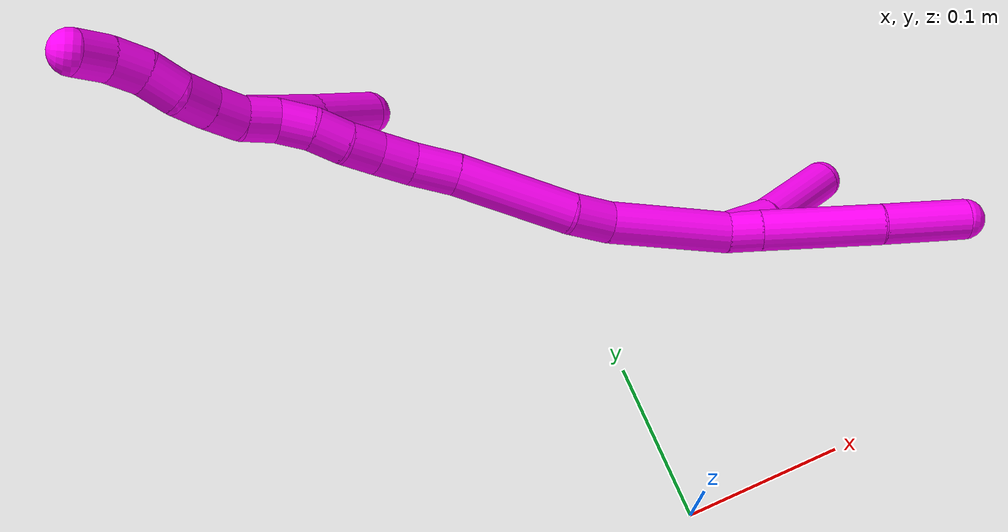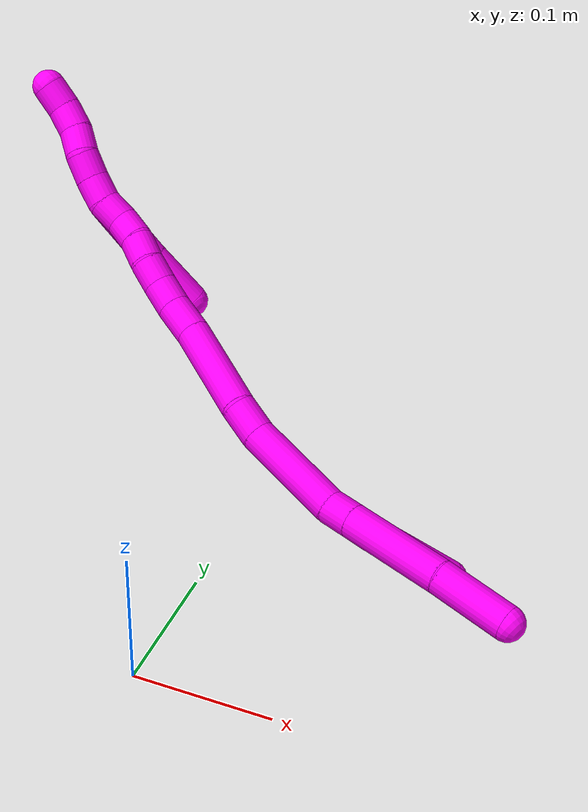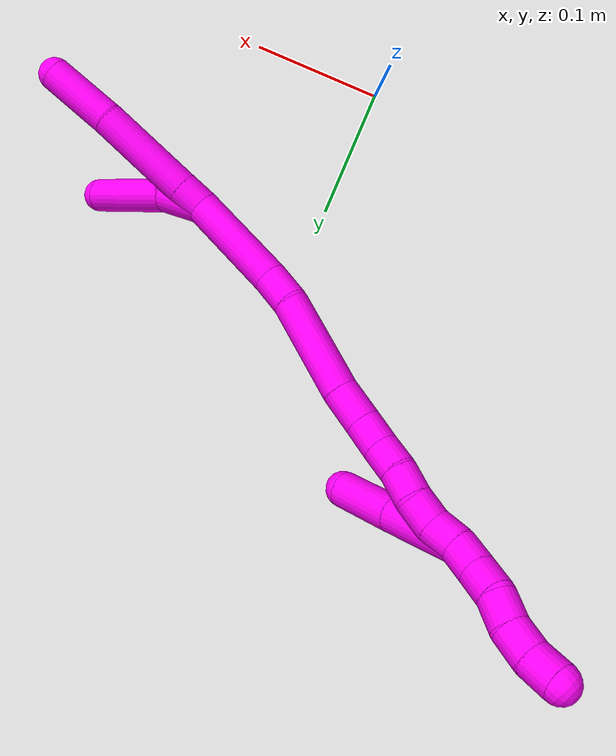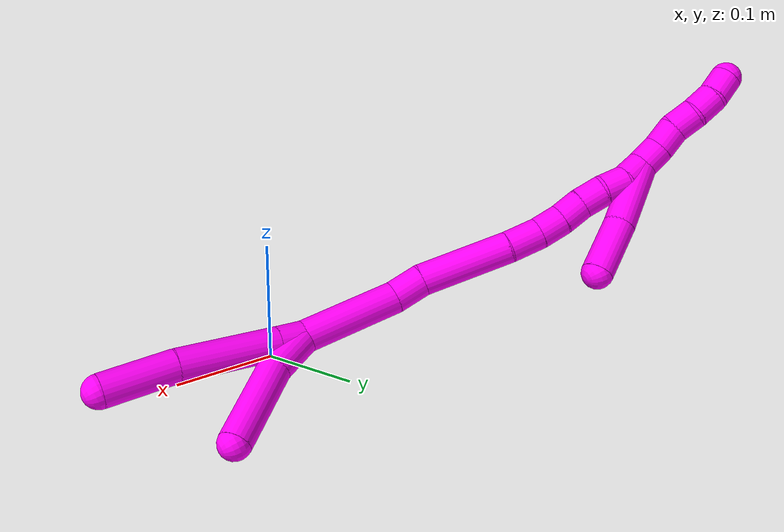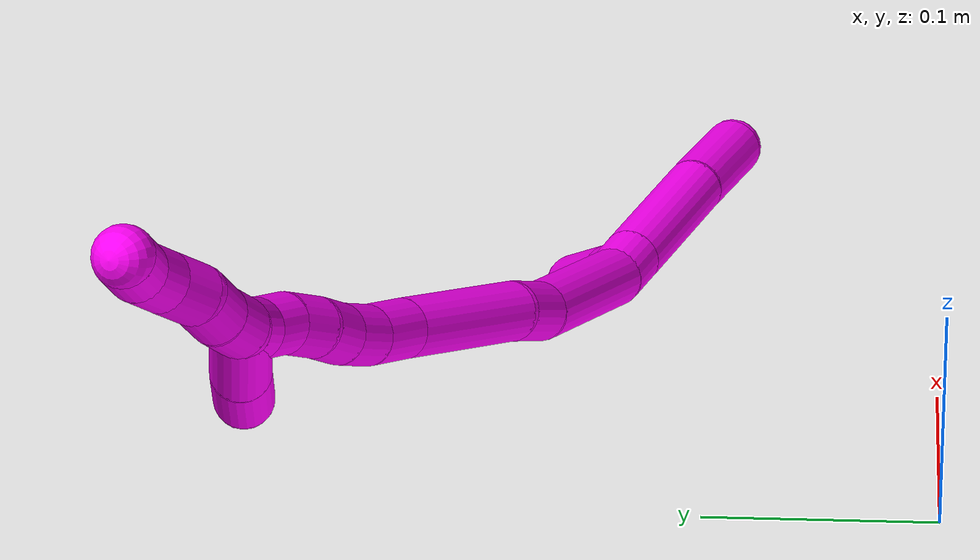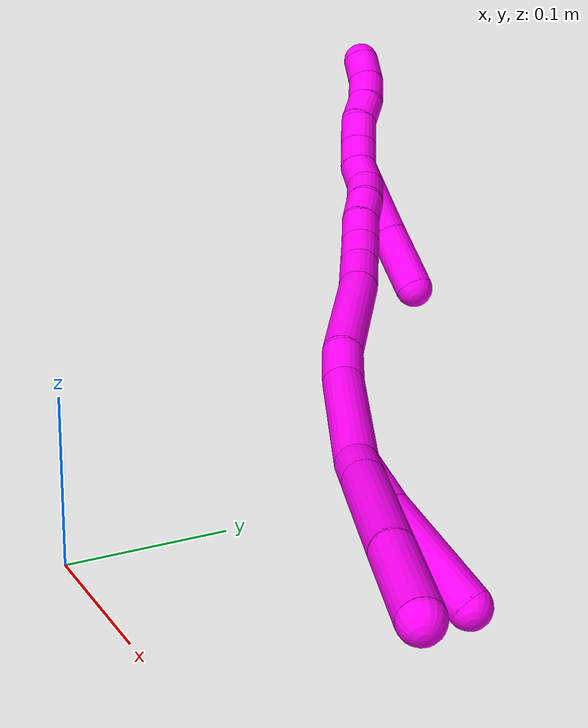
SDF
<sdf version="1.7">
 <world name="default">
  <model name="10">
   <static>0</static>
   <link name="10">
    <collision name="collision-cylinder-e_1_2_8">
     <pose>0.002743 -0.001044 -0.009913 3.03669 0.268512 2.40014</pose>
     <geometry><cylinder><radius>0.0125</radius><length>0.020677</length></cylinder></geometry>
     <surface>
      <friction><ode><mu>1.16</mu><mu2>1.16</mu2><slip1>0</slip1><slip2>0</slip2></ode></friction>
      <contact><ode><kp>1e+06</kp><kd>1</kd><max_vel>0</max_vel><min_depth>0.001</min_depth></ode></contact>
     </surface>
    </collision>
    <visual name="visual-cylinder-e_1_2_8">
     <pose>0.002743 -0.001044 -0.009913 3.03669 0.268512 2.40014</pose>
     <geometry><cylinder><radius>0.0125</radius><length>0.020677</length></cylinder></geometry>
     <material><ambient>1 0 0.964706 1</ambient></material>
    </visual>
    <collision name="collision-cylinder-e_2_8_9">
     <pose>0.015597 -0.006296 -0.055743 3.02495 0.27266 2.33681</pose>
     <geometry><cylinder><radius>0.0125</radius><length>0.075099</length></cylinder></geometry>
     <surface>
      <friction><ode><mu>1.16</mu><mu2>1.16</mu2><slip1>0</slip1><slip2>0</slip2></ode></friction>
      <contact><ode><kp>1e+06</kp><kd>1</kd><max_vel>0</max_vel><min_depth>0.001</min_depth></ode></contact>
     </surface>
    </collision>
    <visual name="visual-cylinder-e_2_8_9">
     <pose>0.015597 -0.006296 -0.055743 3.02495 0.27266 2.33681</pose>
     <geometry><cylinder><radius>0.0125</radius><length>0.075099</length></cylinder></geometry>
     <material><ambient>1 0 0.964706 1</ambient></material>
    </visual>
    <collision name="collision-cylinder-e_3_9_6">
     <pose>0.031422 -0.011406 -0.118148 3.10758 0.212309 2.825</pose>
     <geometry><cylinder><radius>0.0125</radius><length>0.054224</length></cylinder></geometry>
     <surface>
      <friction><ode><mu>1.16</mu><mu2>1.16</mu2><slip1>0</slip1><slip2>0</slip2></ode></friction>
      <contact><ode><kp>1e+06</kp><kd>1</kd><max_vel>0</max_vel><min_depth>0.001</min_depth></ode></contact>
     </surface>
    </collision>
    <visual name="visual-cylinder-e_3_9_6">
     <pose>0.031422 -0.011406 -0.118148 3.10758 0.212309 2.825</pose>
     <geometry><cylinder><radius>0.0125</radius><length>0.054224</length></cylinder></geometry>
     <material><ambient>1 0 0.964706 1</ambient></material>
    </visual>
    <collision name="collision-cylinder-e_1_2_10">
     <pose>0.000919 0.006919 -0.015521 -2.72224 0.054034 -0.252624</pose>
     <geometry><cylinder><radius>0.0125</radius><length>0.034037</length></cylinder></geometry>
     <surface>
      <friction><ode><mu>1.16</mu><mu2>1.16</mu2><slip1>0</slip1><slip2>0</slip2></ode></friction>
      <contact><ode><kp>1e+06</kp><kd>1</kd><max_vel>0</max_vel><min_depth>0.001</min_depth></ode></contact>
     </surface>
    </collision>
    <visual name="visual-cylinder-e_1_2_10">
     <pose>0.000919 0.006919 -0.015521 -2.72224 0.054034 -0.252624</pose>
     <geometry><cylinder><radius>0.0125</radius><length>0.034037</length></cylinder></geometry>
     <material><ambient>1 0 0.964706 1</ambient></material>
    </visual>
    <collision name="collision-cylinder-e_2_10_5">
     <pose>0.002368 0.034159 -0.057015 -2.47769 0.016054 -0.046566</pose>
     <geometry><cylinder><radius>0.0125</radius><length>0.065963</length></cylinder></geometry>
     <surface>
      <friction><ode><mu>1.16</mu><mu2>1.16</mu2><slip1>0</slip1><slip2>0</slip2></ode></friction>
      <contact><ode><kp>1e+06</kp><kd>1</kd><max_vel>0</max_vel><min_depth>0.001</min_depth></ode></contact>
     </surface>
    </collision>
    <visual name="visual-cylinder-e_2_10_5">
     <pose>0.002368 0.034159 -0.057015 -2.47769 0.016054 -0.046566</pose>
     <geometry><cylinder><radius>0.0125</radius><length>0.065963</length></cylinder></geometry>
     <material><ambient>1 0 0.964706 1</ambient></material>
    </visual>
    <collision name="collision-cylinder-e_1_2_11">
     <pose>-0.001662 0.00215 0.037525 -0.057236 -0.044177 0.001265</pose>
     <geometry><cylinder><radius>0.0125</radius><length>0.075247</length></cylinder></geometry>
     <surface>
      <friction><ode><mu>1.16</mu><mu2>1.16</mu2><slip1>0</slip1><slip2>0</slip2></ode></friction>
      <contact><ode><kp>1e+06</kp><kd>1</kd><max_vel>0</max_vel><min_depth>0.001</min_depth></ode></contact>
     </surface>
    </collision>
    <visual name="visual-cylinder-e_1_2_11">
     <pose>-0.001662 0.00215 0.037525 -0.057236 -0.044177 0.001265</pose>
     <geometry><cylinder><radius>0.0125</radius><length>0.075247</length></cylinder></geometry>
     <material><ambient>1 0 0.964706 1</ambient></material>
    </visual>
    <collision name="collision-cylinder-e_2_11_12">
     <pose>-0.001411 0.0046 0.087515 -0.024015 0.152171 -0.001831</pose>
     <geometry><cylinder><radius>0.0125</radius><length>0.025226</length></cylinder></geometry>
     <surface>
      <friction><ode><mu>1.16</mu><mu2>1.16</mu2><slip1>0</slip1><slip2>0</slip2></ode></friction>
      <contact><ode><kp>1e+06</kp><kd>1</kd><max_vel>0</max_vel><min_depth>0.001</min_depth></ode></contact>
     </surface>
    </collision>
    <visual name="visual-cylinder-e_2_11_12">
     <pose>-0.001411 0.0046 0.087515 -0.024015 0.152171 -0.001831</pose>
     <geometry><cylinder><radius>0.0125</radius><length>0.025226</length></cylinder></geometry>
     <material><ambient>1 0 0.964706 1</ambient></material>
    </visual>
    <collision name="collision-cylinder-e_3_12_13">
     <pose>0.004366 0.013376 0.134479 -0.240943 0.108361 -0.013131</pose>
     <geometry><cylinder><radius>0.0125</radius><length>0.071473</length></cylinder></geometry>
     <surface>
      <friction><ode><mu>1.16</mu><mu2>1.16</mu2><slip1>0</slip1><slip2>0</slip2></ode></friction>
      <contact><ode><kp>1e+06</kp><kd>1</kd><max_vel>0</max_vel><min_depth>0.001</min_depth></ode></contact>
     </surface>
    </collision>
    <visual name="visual-cylinder-e_3_12_13">
     <pose>0.004366 0.013376 0.134479 -0.240943 0.108361 -0.013131</pose>
     <geometry><cylinder><radius>0.0125</radius><length>0.071473</length></cylinder></geometry>
     <material><ambient>1 0 0.964706 1</ambient></material>
    </visual>
    <collision name="collision-cylinder-e_4_13_14">
     <pose>0.009245 0.023618 0.182092 -0.133712 0.076563 -0.005129</pose>
     <geometry><cylinder><radius>0.0125</radius><length>0.026539</length></cylinder></geometry>
     <surface>
      <friction><ode><mu>1.16</mu><mu2>1.16</mu2><slip1>0</slip1><slip2>0</slip2></ode></friction>
      <contact><ode><kp>1e+06</kp><kd>1</kd><max_vel>0</max_vel><min_depth>0.001</min_depth></ode></contact>
     </surface>
    </collision>
    <visual name="visual-cylinder-e_4_13_14">
     <pose>0.009245 0.023618 0.182092 -0.133712 0.076563 -0.005129</pose>
     <geometry><cylinder><radius>0.0125</radius><length>0.026539</length></cylinder></geometry>
     <material><ambient>1 0 0.964706 1</ambient></material>
    </visual>
    <collision name="collision-cylinder-e_5_14_15">
     <pose>0.012284 0.026122 0.205569 -0.071348 0.192324 -0.006885</pose>
     <geometry><cylinder><radius>0.0125</radius><length>0.021171</length></cylinder></geometry>
     <surface>
      <friction><ode><mu>1.16</mu><mu2>1.16</mu2><slip1>0</slip1><slip2>0</slip2></ode></friction>
      <contact><ode><kp>1e+06</kp><kd>1</kd><max_vel>0</max_vel><min_depth>0.001</min_depth></ode></contact>
     </surface>
    </collision>
    <visual name="visual-cylinder-e_5_14_15">
     <pose>0.012284 0.026122 0.205569 -0.071348 0.192324 -0.006885</pose>
     <geometry><cylinder><radius>0.0125</radius><length>0.021171</length></cylinder></geometry>
     <material><ambient>1 0 0.964706 1</ambient></material>
    </visual>
    <collision name="collision-cylinder-e_6_15_16">
     <pose>0.017054 0.026634 0.225589 0.023735 0.277113 0.00331</pose>
     <geometry><cylinder><radius>0.0125</radius><length>0.020084</length></cylinder></geometry>
     <surface>
      <friction><ode><mu>1.16</mu><mu2>1.16</mu2><slip1>0</slip1><slip2>0</slip2></ode></friction>
      <contact><ode><kp>1e+06</kp><kd>1</kd><max_vel>0</max_vel><min_depth>0.001</min_depth></ode></contact>
     </surface>
    </collision>
    <visual name="visual-cylinder-e_6_15_16">
     <pose>0.017054 0.026634 0.225589 0.023735 0.277113 0.00331</pose>
     <geometry><cylinder><radius>0.0125</radius><length>0.020084</length></cylinder></geometry>
     <material><ambient>1 0 0.964706 1</ambient></material>
    </visual>
    <collision name="collision-cylinder-e_7_16_17">
     <pose>0.022549 0.027861 0.24487 -0.15016 0.275018 -0.020818</pose>
     <geometry><cylinder><radius>0.0125</radius><length>0.02023</length></cylinder></geometry>
     <surface>
      <friction><ode><mu>1.16</mu><mu2>1.16</mu2><slip1>0</slip1><slip2>0</slip2></ode></friction>
      <contact><ode><kp>1e+06</kp><kd>1</kd><max_vel>0</max_vel><min_depth>0.001</min_depth></ode></contact>
     </surface>
    </collision>
    <visual name="visual-cylinder-e_7_16_17">
     <pose>0.022549 0.027861 0.24487 -0.15016 0.275018 -0.020818</pose>
     <geometry><cylinder><radius>0.0125</radius><length>0.02023</length></cylinder></geometry>
     <material><ambient>1 0 0.964706 1</ambient></material>
    </visual>
    <collision name="collision-cylinder-e_8_17_18">
     <pose>0.025922 0.030605 0.264402 -0.129313 0.062596 -0.004054</pose>
     <geometry><cylinder><radius>0.0125</radius><length>0.020018</length></cylinder></geometry>
     <surface>
      <friction><ode><mu>1.16</mu><mu2>1.16</mu2><slip1>0</slip1><slip2>0</slip2></ode></friction>
      <contact><ode><kp>1e+06</kp><kd>1</kd><max_vel>0</max_vel><min_depth>0.001</min_depth></ode></contact>
     </surface>
    </collision>
    <visual name="visual-cylinder-e_8_17_18">
     <pose>0.025922 0.030605 0.264402 -0.129313 0.062596 -0.004054</pose>
     <geometry><cylinder><radius>0.0125</radius><length>0.020018</length></cylinder></geometry>
     <material><ambient>1 0 0.964706 1</ambient></material>
    </visual>
    <collision name="collision-cylinder-e_9_18_1">
     <pose>0.027533 0.029927 0.284069 0.198784 0.098614 0.009842</pose>
     <geometry><cylinder><radius>0.0125</radius><length>0.020011</length></cylinder></geometry>
     <surface>
      <friction><ode><mu>1.16</mu><mu2>1.16</mu2><slip1>0</slip1><slip2>0</slip2></ode></friction>
      <contact><ode><kp>1e+06</kp><kd>1</kd><max_vel>0</max_vel><min_depth>0.001</min_depth></ode></contact>
     </surface>
    </collision>
    <visual name="visual-cylinder-e_9_18_1">
     <pose>0.027533 0.029927 0.284069 0.198784 0.098614 0.009842</pose>
     <geometry><cylinder><radius>0.0125</radius><length>0.020011</length></cylinder></geometry>
     <material><ambient>1 0 0.964706 1</ambient></material>
    </visual>
    <collision name="collision-cylinder-e_1_1_19">
     <pose>0.032153 0.027036 0.3031 0.099417 0.371994 0.018722</pose>
     <geometry><cylinder><radius>0.0125</radius><length>0.02</length></cylinder></geometry>
     <surface>
      <friction><ode><mu>1.16</mu><mu2>1.16</mu2><slip1>0</slip1><slip2>0</slip2></ode></friction>
      <contact><ode><kp>1e+06</kp><kd>1</kd><max_vel>0</max_vel><min_depth>0.001</min_depth></ode></contact>
     </surface>
    </collision>
    <visual name="visual-cylinder-e_1_1_19">
     <pose>0.032153 0.027036 0.3031 0.099417 0.371994 0.018722</pose>
     <geometry><cylinder><radius>0.0125</radius><length>0.02</length></cylinder></geometry>
     <material><ambient>1 0 0.964706 1</ambient></material>
    </visual>
    <collision name="collision-cylinder-e_2_19_20">
     <pose>0.040506 0.02451 0.321039 0.182642 0.491467 0.045927</pose>
     <geometry><cylinder><radius>0.0125</radius><length>0.02</length></cylinder></geometry>
     <surface>
      <friction><ode><mu>1.16</mu><mu2>1.16</mu2><slip1>0</slip1><slip2>0</slip2></ode></friction>
      <contact><ode><kp>1e+06</kp><kd>1</kd><max_vel>0</max_vel><min_depth>0.001</min_depth></ode></contact>
     </surface>
    </collision>
    <visual name="visual-cylinder-e_2_19_20">
     <pose>0.040506 0.02451 0.321039 0.182642 0.491467 0.045927</pose>
     <geometry><cylinder><radius>0.0125</radius><length>0.02</length></cylinder></geometry>
     <material><ambient>1 0 0.964706 1</ambient></material>
    </visual>
    <collision name="collision-cylinder-e_3_20_21">
     <pose>0.049681 0.024359 0.338544 -0.162726 0.461715 -0.038328</pose>
     <geometry><cylinder><radius>0.0125</radius><length>0.02</length></cylinder></geometry>
     <surface>
      <friction><ode><mu>1.16</mu><mu2>1.16</mu2><slip1>0</slip1><slip2>0</slip2></ode></friction>
      <contact><ode><kp>1e+06</kp><kd>1</kd><max_vel>0</max_vel><min_depth>0.001</min_depth></ode></contact>
     </surface>
    </collision>
    <visual name="visual-cylinder-e_3_20_21">
     <pose>0.049681 0.024359 0.338544 -0.162726 0.461715 -0.038328</pose>
     <geometry><cylinder><radius>0.0125</radius><length>0.02</length></cylinder></geometry>
     <material><ambient>1 0 0.964706 1</ambient></material>
    </visual>
    <collision name="collision-cylinder-e_4_21_22">
     <pose>0.057442 0.025339 0.356804 0.049932 0.336968 0.008495</pose>
     <geometry><cylinder><radius>0.0125</radius><length>0.02</length></cylinder></geometry>
     <surface>
      <friction><ode><mu>1.16</mu><mu2>1.16</mu2><slip1>0</slip1><slip2>0</slip2></ode></friction>
      <contact><ode><kp>1e+06</kp><kd>1</kd><max_vel>0</max_vel><min_depth>0.001</min_depth></ode></contact>
     </surface>
    </collision>
    <visual name="visual-cylinder-e_4_21_22">
     <pose>0.057442 0.025339 0.356804 0.049932 0.336968 0.008495</pose>
     <geometry><cylinder><radius>0.0125</radius><length>0.02</length></cylinder></geometry>
     <material><ambient>1 0 0.964706 1</ambient></material>
    </visual>
    <collision name="collision-cylinder-e_5_22_4">
     <pose>0.063847 0.021923 0.37527 0.31487 0.315125 0.050433</pose>
     <geometry><cylinder><radius>0.0125</radius><length>0.02</length></cylinder></geometry>
     <surface>
      <friction><ode><mu>1.16</mu><mu2>1.16</mu2><slip1>0</slip1><slip2>0</slip2></ode></friction>
      <contact><ode><kp>1e+06</kp><kd>1</kd><max_vel>0</max_vel><min_depth>0.001</min_depth></ode></contact>
     </surface>
    </collision>
    <visual name="visual-cylinder-e_5_22_4">
     <pose>0.063847 0.021923 0.37527 0.31487 0.315125 0.050433</pose>
     <geometry><cylinder><radius>0.0125</radius><length>0.02</length></cylinder></geometry>
     <material><ambient>1 0 0.964706 1</ambient></material>
    </visual>
    <collision name="collision-cylinder-e_1_1_23">
     <pose>0.020534 0.042287 0.271666 -2.56776 -0.293767 0.929577</pose>
     <geometry><cylinder><radius>0.0125</radius><length>0.055142</length></cylinder></geometry>
     <surface>
      <friction><ode><mu>1.16</mu><mu2>1.16</mu2><slip1>0</slip1><slip2>0</slip2></ode></friction>
      <contact><ode><kp>1e+06</kp><kd>1</kd><max_vel>0</max_vel><min_depth>0.001</min_depth></ode></contact>
     </surface>
    </collision>
    <visual name="visual-cylinder-e_1_1_23">
     <pose>0.020534 0.042287 0.271666 -2.56776 -0.293767 0.929577</pose>
     <geometry><cylinder><radius>0.0125</radius><length>0.055142</length></cylinder></geometry>
     <material><ambient>1 0 0.964706 1</ambient></material>
    </visual>
    <collision name="collision-cylinder-e_2_23_3">
     <pose>0.007436 0.06741 0.230522 -2.62438 -0.230087 0.823687</pose>
     <geometry><cylinder><radius>0.0125</radius><length>0.044858</length></cylinder></geometry>
     <surface>
      <friction><ode><mu>1.16</mu><mu2>1.16</mu2><slip1>0</slip1><slip2>0</slip2></ode></friction>
      <contact><ode><kp>1e+06</kp><kd>1</kd><max_vel>0</max_vel><min_depth>0.001</min_depth></ode></contact>
     </surface>
    </collision>
    <visual name="visual-cylinder-e_2_23_3">
     <pose>0.007436 0.06741 0.230522 -2.62438 -0.230087 0.823687</pose>
     <geometry><cylinder><radius>0.0125</radius><length>0.044858</length></cylinder></geometry>
     <material><ambient>1 0 0.964706 1</ambient></material>
    </visual>
    <collision name="collision-sphere-3">
     <pose>0.00232 0.078208 0.211541 0 -0 0</pose>
     <geometry><sphere><radius>0.0125</radius></sphere></geometry>
     <surface>
      <friction><ode><mu>1.16</mu><mu2>1.16</mu2><slip1>0</slip1><slip2>0</slip2></ode></friction>
      <contact><ode><kp>1e+06</kp><kd>1</kd><max_vel>0</max_vel><min_depth>0.001</min_depth></ode></contact>
     </surface>
    </collision>
    <visual name="visual-sphere-3">
     <pose>0.00232 0.078208 0.211541 0 -0 0</pose>
     <geometry><sphere><radius>0.0125</radius></sphere></geometry>
     <material><ambient>1 0 0.964706 1</ambient></material>
    </visual>
    <collision name="collision-sphere-23">
     <pose>0.012551 0.056613 0.249503 0 -0 0</pose>
     <geometry><sphere><radius>0.0125</radius></sphere></geometry>
     <surface>
      <friction><ode><mu>1.16</mu><mu2>1.16</mu2><slip1>0</slip1><slip2>0</slip2></ode></friction>
      <contact><ode><kp>1e+06</kp><kd>1</kd><max_vel>0</max_vel><min_depth>0.001</min_depth></ode></contact>
     </surface>
    </collision>
    <visual name="visual-sphere-23">
     <pose>0.012551 0.056613 0.249503 0 -0 0</pose>
     <geometry><sphere><radius>0.0125</radius></sphere></geometry>
     <material><ambient>1 0 0.964706 1</ambient></material>
    </visual>
    <collision name="collision-sphere-4">
     <pose>0.066947 0.018979 0.38431 0 -0 0</pose>
     <geometry><sphere><radius>0.0125</radius></sphere></geometry>
     <surface>
      <friction><ode><mu>1.16</mu><mu2>1.16</mu2><slip1>0</slip1><slip2>0</slip2></ode></friction>
      <contact><ode><kp>1e+06</kp><kd>1</kd><max_vel>0</max_vel><min_depth>0.001</min_depth></ode></contact>
     </surface>
    </collision>
    <visual name="visual-sphere-4">
     <pose>0.066947 0.018979 0.38431 0 -0 0</pose>
     <geometry><sphere><radius>0.0125</radius></sphere></geometry>
     <material><ambient>1 0 0.964706 1</ambient></material>
    </visual>
    <collision name="collision-sphere-22">
     <pose>0.060748 0.024868 0.36623 0 -0 0</pose>
     <geometry><sphere><radius>0.0125</radius></sphere></geometry>
     <surface>
      <friction><ode><mu>1.16</mu><mu2>1.16</mu2><slip1>0</slip1><slip2>0</slip2></ode></friction>
      <contact><ode><kp>1e+06</kp><kd>1</kd><max_vel>0</max_vel><min_depth>0.001</min_depth></ode></contact>
     </surface>
    </collision>
    <visual name="visual-sphere-22">
     <pose>0.060748 0.024868 0.36623 0 -0 0</pose>
     <geometry><sphere><radius>0.0125</radius></sphere></geometry>
     <material><ambient>1 0 0.964706 1</ambient></material>
    </visual>
    <collision name="collision-sphere-21">
     <pose>0.054135 0.02581 0.347378 0 -0 0</pose>
     <geometry><sphere><radius>0.0125</radius></sphere></geometry>
     <surface>
      <friction><ode><mu>1.16</mu><mu2>1.16</mu2><slip1>0</slip1><slip2>0</slip2></ode></friction>
      <contact><ode><kp>1e+06</kp><kd>1</kd><max_vel>0</max_vel><min_depth>0.001</min_depth></ode></contact>
     </surface>
    </collision>
    <visual name="visual-sphere-21">
     <pose>0.054135 0.02581 0.347378 0 -0 0</pose>
     <geometry><sphere><radius>0.0125</radius></sphere></geometry>
     <material><ambient>1 0 0.964706 1</ambient></material>
    </visual>
    <collision name="collision-sphere-20">
     <pose>0.045226 0.022909 0.329709 0 -0 0</pose>
     <geometry><sphere><radius>0.0125</radius></sphere></geometry>
     <surface>
      <friction><ode><mu>1.16</mu><mu2>1.16</mu2><slip1>0</slip1><slip2>0</slip2></ode></friction>
      <contact><ode><kp>1e+06</kp><kd>1</kd><max_vel>0</max_vel><min_depth>0.001</min_depth></ode></contact>
     </surface>
    </collision>
    <visual name="visual-sphere-20">
     <pose>0.045226 0.022909 0.329709 0 -0 0</pose>
     <geometry><sphere><radius>0.0125</radius></sphere></geometry>
     <material><ambient>1 0 0.964706 1</ambient></material>
    </visual>
    <collision name="collision-sphere-5">
     <pose>0.002897 0.05448 -0.082988 0 -0 0</pose>
     <geometry><sphere><radius>0.0125</radius></sphere></geometry>
     <surface>
      <friction><ode><mu>1.16</mu><mu2>1.16</mu2><slip1>0</slip1><slip2>0</slip2></ode></friction>
      <contact><ode><kp>1e+06</kp><kd>1</kd><max_vel>0</max_vel><min_depth>0.001</min_depth></ode></contact>
     </surface>
    </collision>
    <visual name="visual-sphere-5">
     <pose>0.002897 0.05448 -0.082988 0 -0 0</pose>
     <geometry><sphere><radius>0.0125</radius></sphere></geometry>
     <material><ambient>1 0 0.964706 1</ambient></material>
    </visual>
    <collision name="collision-sphere-10">
     <pose>0.001838 0.013838 -0.031042 0 -0 0</pose>
     <geometry><sphere><radius>0.0125</radius></sphere></geometry>
     <surface>
      <friction><ode><mu>1.16</mu><mu2>1.16</mu2><slip1>0</slip1><slip2>0</slip2></ode></friction>
      <contact><ode><kp>1e+06</kp><kd>1</kd><max_vel>0</max_vel><min_depth>0.001</min_depth></ode></contact>
     </surface>
    </collision>
    <visual name="visual-sphere-10">
     <pose>0.001838 0.013838 -0.031042 0 -0 0</pose>
     <geometry><sphere><radius>0.0125</radius></sphere></geometry>
     <material><ambient>1 0 0.964706 1</ambient></material>
    </visual>
    <collision name="collision-sphere-6">
     <pose>0.037135 -0.012307 -0.144636 0 -0 0</pose>
     <geometry><sphere><radius>0.0125</radius></sphere></geometry>
     <surface>
      <friction><ode><mu>1.16</mu><mu2>1.16</mu2><slip1>0</slip1><slip2>0</slip2></ode></friction>
      <contact><ode><kp>1e+06</kp><kd>1</kd><max_vel>0</max_vel><min_depth>0.001</min_depth></ode></contact>
     </surface>
    </collision>
    <visual name="visual-sphere-6">
     <pose>0.037135 -0.012307 -0.144636 0 -0 0</pose>
     <geometry><sphere><radius>0.0125</radius></sphere></geometry>
     <material><ambient>1 0 0.964706 1</ambient></material>
    </visual>
    <collision name="collision-sphere-9">
     <pose>0.025709 -0.010504 -0.091659 0 -0 0</pose>
     <geometry><sphere><radius>0.0125</radius></sphere></geometry>
     <surface>
      <friction><ode><mu>1.16</mu><mu2>1.16</mu2><slip1>0</slip1><slip2>0</slip2></ode></friction>
      <contact><ode><kp>1e+06</kp><kd>1</kd><max_vel>0</max_vel><min_depth>0.001</min_depth></ode></contact>
     </surface>
    </collision>
    <visual name="visual-sphere-9">
     <pose>0.025709 -0.010504 -0.091659 0 -0 0</pose>
     <geometry><sphere><radius>0.0125</radius></sphere></geometry>
     <material><ambient>1 0 0.964706 1</ambient></material>
    </visual>
    <collision name="collision-sphere-2">
     <geometry><sphere><radius>0.0125</radius></sphere></geometry>
     <surface>
      <friction><ode><mu>1.16</mu><mu2>1.16</mu2><slip1>0</slip1><slip2>0</slip2></ode></friction>
      <contact><ode><kp>1e+06</kp><kd>1</kd><max_vel>0</max_vel><min_depth>0.001</min_depth></ode></contact>
     </surface>
    </collision>
    <visual name="visual-sphere-2">
     <geometry><sphere><radius>0.0125</radius></sphere></geometry>
     <material><ambient>1 0 0.964706 1</ambient></material>
    </visual>
    <collision name="collision-sphere-19">
     <pose>0.035787 0.026111 0.31237 0 -0 0</pose>
     <geometry><sphere><radius>0.0125</radius></sphere></geometry>
     <surface>
      <friction><ode><mu>1.16</mu><mu2>1.16</mu2><slip1>0</slip1><slip2>0</slip2></ode></friction>
      <contact><ode><kp>1e+06</kp><kd>1</kd><max_vel>0</max_vel><min_depth>0.001</min_depth></ode></contact>
     </surface>
    </collision>
    <visual name="visual-sphere-19">
     <pose>0.035787 0.026111 0.31237 0 -0 0</pose>
     <geometry><sphere><radius>0.0125</radius></sphere></geometry>
     <material><ambient>1 0 0.964706 1</ambient></material>
    </visual>
    <collision name="collision-sphere-8">
     <pose>0.005485 -0.002088 -0.019826 0 -0 0</pose>
     <geometry><sphere><radius>0.0125</radius></sphere></geometry>
     <surface>
      <friction><ode><mu>1.16</mu><mu2>1.16</mu2><slip1>0</slip1><slip2>0</slip2></ode></friction>
      <contact><ode><kp>1e+06</kp><kd>1</kd><max_vel>0</max_vel><min_depth>0.001</min_depth></ode></contact>
     </surface>
    </collision>
    <visual name="visual-sphere-8">
     <pose>0.005485 -0.002088 -0.019826 0 -0 0</pose>
     <geometry><sphere><radius>0.0125</radius></sphere></geometry>
     <material><ambient>1 0 0.964706 1</ambient></material>
    </visual>
    <collision name="collision-sphere-11">
     <pose>-0.003323 0.0043 0.075051 0 -0 0</pose>
     <geometry><sphere><radius>0.0125</radius></sphere></geometry>
     <surface>
      <friction><ode><mu>1.16</mu><mu2>1.16</mu2><slip1>0</slip1><slip2>0</slip2></ode></friction>
      <contact><ode><kp>1e+06</kp><kd>1</kd><max_vel>0</max_vel><min_depth>0.001</min_depth></ode></contact>
     </surface>
    </collision>
    <visual name="visual-sphere-11">
     <pose>-0.003323 0.0043 0.075051 0 -0 0</pose>
     <geometry><sphere><radius>0.0125</radius></sphere></geometry>
     <material><ambient>1 0 0.964706 1</ambient></material>
    </visual>
    <collision name="collision-sphere-12">
     <pose>0.000501 0.004899 0.099979 0 -0 0</pose>
     <geometry><sphere><radius>0.0125</radius></sphere></geometry>
     <surface>
      <friction><ode><mu>1.16</mu><mu2>1.16</mu2><slip1>0</slip1><slip2>0</slip2></ode></friction>
      <contact><ode><kp>1e+06</kp><kd>1</kd><max_vel>0</max_vel><min_depth>0.001</min_depth></ode></contact>
     </surface>
    </collision>
    <visual name="visual-sphere-12">
     <pose>0.000501 0.004899 0.099979 0 -0 0</pose>
     <geometry><sphere><radius>0.0125</radius></sphere></geometry>
     <material><ambient>1 0 0.964706 1</ambient></material>
    </visual>
    <collision name="collision-sphere-13">
     <pose>0.008231 0.021854 0.16898 0 -0 0</pose>
     <geometry><sphere><radius>0.0125</radius></sphere></geometry>
     <surface>
      <friction><ode><mu>1.16</mu><mu2>1.16</mu2><slip1>0</slip1><slip2>0</slip2></ode></friction>
      <contact><ode><kp>1e+06</kp><kd>1</kd><max_vel>0</max_vel><min_depth>0.001</min_depth></ode></contact>
     </surface>
    </collision>
    <visual name="visual-sphere-13">
     <pose>0.008231 0.021854 0.16898 0 -0 0</pose>
     <geometry><sphere><radius>0.0125</radius></sphere></geometry>
     <material><ambient>1 0 0.964706 1</ambient></material>
    </visual>
    <collision name="collision-sphere-14">
     <pose>0.01026 0.025381 0.195205 0 -0 0</pose>
     <geometry><sphere><radius>0.0125</radius></sphere></geometry>
     <surface>
      <friction><ode><mu>1.16</mu><mu2>1.16</mu2><slip1>0</slip1><slip2>0</slip2></ode></friction>
      <contact><ode><kp>1e+06</kp><kd>1</kd><max_vel>0</max_vel><min_depth>0.001</min_depth></ode></contact>
     </surface>
    </collision>
    <visual name="visual-sphere-14">
     <pose>0.01026 0.025381 0.195205 0 -0 0</pose>
     <geometry><sphere><radius>0.0125</radius></sphere></geometry>
     <material><ambient>1 0 0.964706 1</ambient></material>
    </visual>
    <collision name="collision-sphere-15">
     <pose>0.014307 0.026863 0.215932 0 -0 0</pose>
     <geometry><sphere><radius>0.0125</radius></sphere></geometry>
     <surface>
      <friction><ode><mu>1.16</mu><mu2>1.16</mu2><slip1>0</slip1><slip2>0</slip2></ode></friction>
      <contact><ode><kp>1e+06</kp><kd>1</kd><max_vel>0</max_vel><min_depth>0.001</min_depth></ode></contact>
     </surface>
    </collision>
    <visual name="visual-sphere-15">
     <pose>0.014307 0.026863 0.215932 0 -0 0</pose>
     <geometry><sphere><radius>0.0125</radius></sphere></geometry>
     <material><ambient>1 0 0.964706 1</ambient></material>
    </visual>
    <collision name="collision-sphere-16">
     <pose>0.019802 0.026404 0.235245 0 -0 0</pose>
     <geometry><sphere><radius>0.0125</radius></sphere></geometry>
     <surface>
      <friction><ode><mu>1.16</mu><mu2>1.16</mu2><slip1>0</slip1><slip2>0</slip2></ode></friction>
      <contact><ode><kp>1e+06</kp><kd>1</kd><max_vel>0</max_vel><min_depth>0.001</min_depth></ode></contact>
     </surface>
    </collision>
    <visual name="visual-sphere-16">
     <pose>0.019802 0.026404 0.235245 0 -0 0</pose>
     <geometry><sphere><radius>0.0125</radius></sphere></geometry>
     <material><ambient>1 0 0.964706 1</ambient></material>
    </visual>
    <collision name="collision-sphere-17">
     <pose>0.025295 0.029317 0.254496 0 -0 0</pose>
     <geometry><sphere><radius>0.0125</radius></sphere></geometry>
     <surface>
      <friction><ode><mu>1.16</mu><mu2>1.16</mu2><slip1>0</slip1><slip2>0</slip2></ode></friction>
      <contact><ode><kp>1e+06</kp><kd>1</kd><max_vel>0</max_vel><min_depth>0.001</min_depth></ode></contact>
     </surface>
    </collision>
    <visual name="visual-sphere-17">
     <pose>0.025295 0.029317 0.254496 0 -0 0</pose>
     <geometry><sphere><radius>0.0125</radius></sphere></geometry>
     <material><ambient>1 0 0.964706 1</ambient></material>
    </visual>
    <collision name="collision-sphere-18">
     <pose>0.026548 0.031893 0.274308 0 -0 0</pose>
     <geometry><sphere><radius>0.0125</radius></sphere></geometry>
     <surface>
      <friction><ode><mu>1.16</mu><mu2>1.16</mu2><slip1>0</slip1><slip2>0</slip2></ode></friction>
      <contact><ode><kp>1e+06</kp><kd>1</kd><max_vel>0</max_vel><min_depth>0.001</min_depth></ode></contact>
     </surface>
    </collision>
    <visual name="visual-sphere-18">
     <pose>0.026548 0.031893 0.274308 0 -0 0</pose>
     <geometry><sphere><radius>0.0125</radius></sphere></geometry>
     <material><ambient>1 0 0.964706 1</ambient></material>
    </visual>
    <collision name="collision-sphere-1">
     <pose>0.028518 0.027961 0.29383 0 -0 0</pose>
     <geometry><sphere><radius>0.0125</radius></sphere></geometry>
     <surface>
      <friction><ode><mu>1.16</mu><mu2>1.16</mu2><slip1>0</slip1><slip2>0</slip2></ode></friction>
      <contact><ode><kp>1e+06</kp><kd>1</kd><max_vel>0</max_vel><min_depth>0.001</min_depth></ode></contact>
     </surface>
    </collision>
    <visual name="visual-sphere-1">
     <pose>0.028518 0.027961 0.29383 0 -0 0</pose>
     <geometry><sphere><radius>0.0125</radius></sphere></geometry>
     <material><ambient>1 0 0.964706 1</ambient></material>
    </visual>
    <inertial>
     <pose>0.015978 0.018558 0.117892 0 -0 0</pose>
     <mass>0.75</mass>
     <inertia>
      <ixx>0.00015</ixx>
      <ixy>0</ixy>
      <ixz>0</ixz>
      <iyy>0.000155</iyy>
      <iyz>0</iyz>
      <izz>-4.5e-05</izz>
     </inertia>
    </inertial>
   </link>
   <pose>0.084358 0.139545 0.066445 -0.92114 -0.949472 0.635048</pose>
  </model>
 </world>
</sdf>
